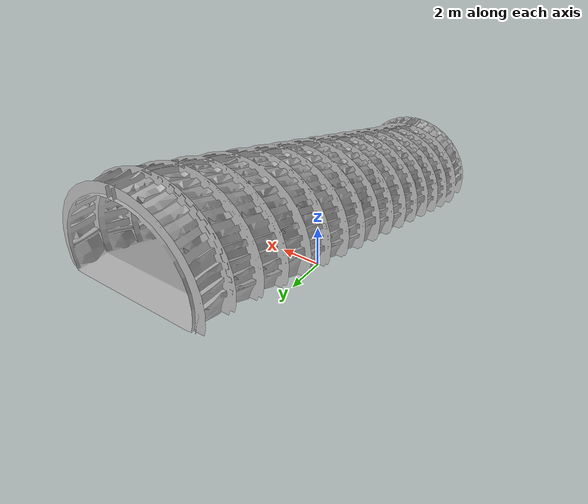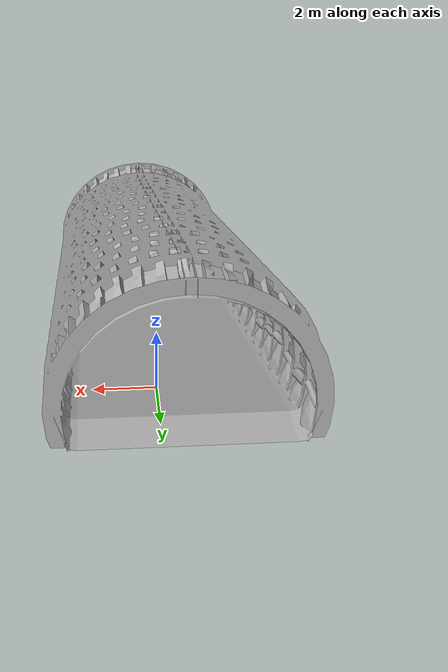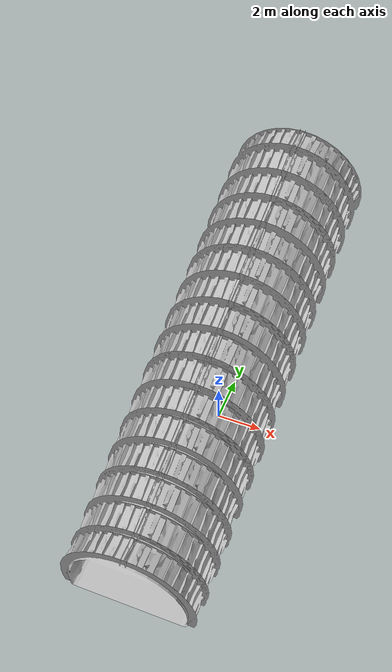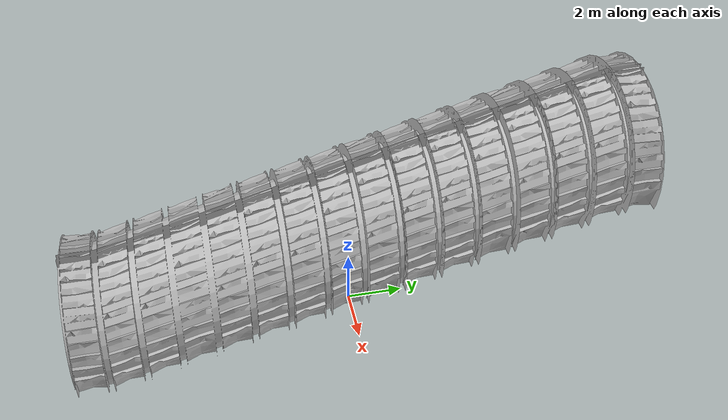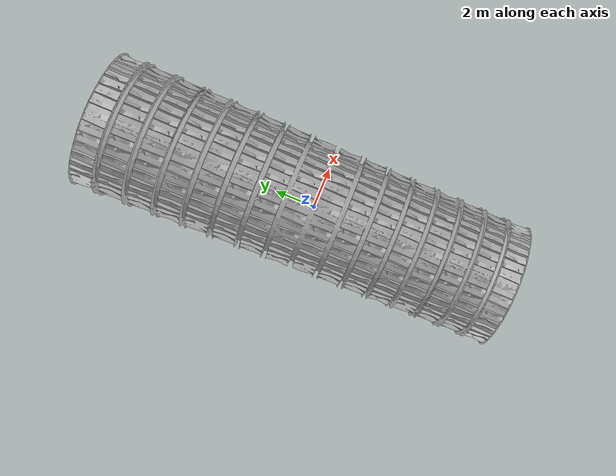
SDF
<?xml version="1.0" ?>
<!--
  Test world loading a tile with submeshes
-->
<sdf version="1.6">
  <world name="collada_world_exporter_tiles_test">
    <plugin
      filename="libignition-gazebo-physics-system.so"
      name="ignition::gazebo::systems::Physics">
    </plugin>

    <plugin
      filename="ignition-gazebo-collada-world-exporter-system"
      name="ignition::gazebo::systems::ColladaWorldExporter">
    </plugin>

    <include>
      <uri>model://tunnel_tile_6</uri>
    </include>
  </world>
</sdf>

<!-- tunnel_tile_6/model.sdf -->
<sdf version="1.6">
  <model name="tunnel_tile_6">
    <static>true</static>
    <link name="link">
      <pose>0 0 0 0 0 0</pose>
      <collision name="collision">
        <pose>0 0 0 1.57 0 0</pose>
        <geometry>
          <mesh>
            <uri>model://tunnel_tile_6/meshes/tunnel_tile_6.dae</uri>
          </mesh>
        </geometry>
      </collision>
      <collision name="collision_ground_1">
        <pose>0 9.323 5 0 0 0</pose>
        <geometry>
          <box>
            <size>6.356 1.354 0.001</size>
          </box>
        </geometry>
      </collision>
      <collision name="collision_ground_2">
        <pose>0 -0.070 2.467 0.2827433 0 0</pose>
        <geometry>
          <box>
            <size>6.356 18.152 0.001</size>
          </box>
        </geometry>
      </collision>
      <collision name="collision_ground_3">
        <pose>0 -9.272 0 0 0 0</pose>
        <geometry>
          <box>
            <size>6.356 1.455 0.001</size>
          </box>
        </geometry>
      </collision>
      <visual name="visual">
        <pose>0 0 0 1.57 0 0</pose>
        <geometry>
          <mesh>
            <uri>model://tunnel_tile_6/meshes/tunnel_tile_6.dae</uri>
          </mesh>
        </geometry>
      </visual>
      <visual name="visual_chainlink">
        <pose>0 0 0 1.57 0 0</pose>
        <geometry>
          <mesh>
            <uri>model://tunnel_tile_6/meshes/tunnel_tile_6.dae</uri>
            <submesh>
              <name>Chainlink</name>
              <center>false</center>
            </submesh>
          </mesh>
        </geometry>
        <material>
          <diffuse>1.0 1.0 1.0</diffuse>
          <specular>1.0 1.0 1.0</specular>
          <pbr>
            <metal>
              <albedo_map>model://tunnel_tile_6/materials/textures/Chainlink_Albedo.png</albedo_map>
              <normal_map>model://tunnel_tile_6/materials/textures/Chainlink_Normal.png</normal_map>
              <roughness_map>model://tunnel_tile_6/materials/textures/Chainlink_Roughness.png</roughness_map>
              <metalness_map>model://tunnel_tile_6/materials/textures/Chainlink_Metalness.png</metalness_map>
            </metal>
          </pbr>
          <!-- fallback to script if no PBR support-->
          <script>
              <uri>model://tunnel_tile_6/materials/scripts</uri>
              <uri>model://tunnel_tile_6/materials/textures</uri>
              <name>TunnelTile/Chainlink_Diffuse</name>
          </script>
        </material>
      </visual>
      <visual name="visual_ground">
        <pose>0 0 0 1.57 0 0</pose>
        <geometry>
          <mesh>
            <uri>model://tunnel_tile_6/meshes/tunnel_tile_6.dae</uri>
            <submesh>
              <name>Ground</name>
              <center>false</center>
            </submesh>
          </mesh>
        </geometry>
        <material>
          <diffuse>1.0 1.0 1.0</diffuse>
          <specular>1.0 1.0 1.0</specular>
          <pbr>
            <metal>
              <albedo_map>model://tunnel_tile_6/materials/textures/Ground_Albedo.png</albedo_map>
              <normal_map>model://tunnel_tile_6/materials/textures/Ground_Normal.png</normal_map>
              <roughness_map>model://tunnel_tile_6/materials/textures/Ground_Roughness.png</roughness_map>
            </metal>
          </pbr>
          <!-- fallback to script if no PBR support-->
          <script>
              <uri>model://tunnel_tile_6/materials/scripts</uri>
              <uri>model://tunnel_tile_6/materials/textures</uri>
              <name>TunnelTile/Ground_Diffuse</name>
          </script>
        </material>
      </visual>
      <visual name="visual_wood">
        <pose>0 0 0 1.57 0 0</pose>
        <geometry>
          <mesh>
            <uri>model://tunnel_tile_6/meshes/tunnel_tile_6.dae</uri>
            <submesh>
              <name>Wood</name>
              <center>false</center>
            </submesh>
          </mesh>
        </geometry>
        <material>
          <diffuse>1.0 1.0 1.0</diffuse>
          <specular>1.0 1.0 1.0</specular>
          <pbr>
            <metal>
              <albedo_map>model://tunnel_tile_6/materials/textures/Wood_Albedo.png</albedo_map>
              <normal_map>model://tunnel_tile_6/materials/textures/Wood_Normal.jpg</normal_map>
            </metal>
          </pbr>
          <!-- fallback to script if no PBR support-->
          <script>
              <uri>model://tunnel_tile_6/materials/scripts</uri>
              <uri>model://tunnel_tile_6/materials/textures</uri>
              <name>TunnelTile/Wood_Diffuse</name>
          </script>
        </material>
      </visual>
      <visual name="visual_walls">
        <pose>0 0 0 1.57 0 0</pose>
        <geometry>
          <mesh>
            <uri>model://tunnel_tile_6/meshes/tunnel_tile_6.dae</uri>
            <submesh>
              <name>Walls</name>
              <center>false</center>
            </submesh>
          </mesh>
        </geometry>
        <material>
          <diffuse>1.0 1.0 1.0</diffuse>
          <specular>1.0 1.0 1.0</specular>
          <pbr>
            <metal>
              <albedo_map>model://tunnel_tile_6/materials/textures/Walls_Albedo.png</albedo_map>
              <normal_map>model://tunnel_tile_6/materials/textures/Walls_Normal.png</normal_map>
              <roughness_map>model://tunnel_tile_6/materials/textures/Walls_Roughness.png</roughness_map>
              <metalness_map>model://tunnel_tile_6/materials/textures/Walls_Metalness.png</metalness_map>
            </metal>
          </pbr>
          <!-- fallback to script if no PBR support-->
          <script>
              <uri>model://tunnel_tile_6/materials/scripts</uri>
              <uri>model://tunnel_tile_6/materials/textures</uri>
              <name>TunnelTile/Walls_Diffuse</name>
          </script>
        </material>
      </visual>
      <visual name="visual_lights">
        <pose>0 0 0 1.57 0 0</pose>
        <geometry>
          <mesh>
            <uri>model://tunnel_tile_6/meshes/tunnel_tile_6.dae</uri>
            <submesh>
              <name>Lights</name>
              <center>false</center>
            </submesh>
          </mesh>
        </geometry>
        <material>
          <diffuse>1.0 1.0 1.0</diffuse>
          <specular>1.0 1.0 1.0</specular>
          <pbr>
            <metal>
              <albedo_map>model://tunnel_tile_6/materials/textures/Light_Albedo.png</albedo_map>
              <normal_map>model://tunnel_tile_6/materials/textures/Light_Normal.png</normal_map>
            </metal>
          </pbr>
          <!-- fallback to script if no PBR support-->
          <script>
              <uri>model://tunnel_tile_6/materials/scripts</uri>
              <uri>model://tunnel_tile_6/materials/textures</uri>
              <name>TunnelTile/Light_Diffuse</name>
          </script>
        </material>
      </visual>
    </link>
  </model>
</sdf>
